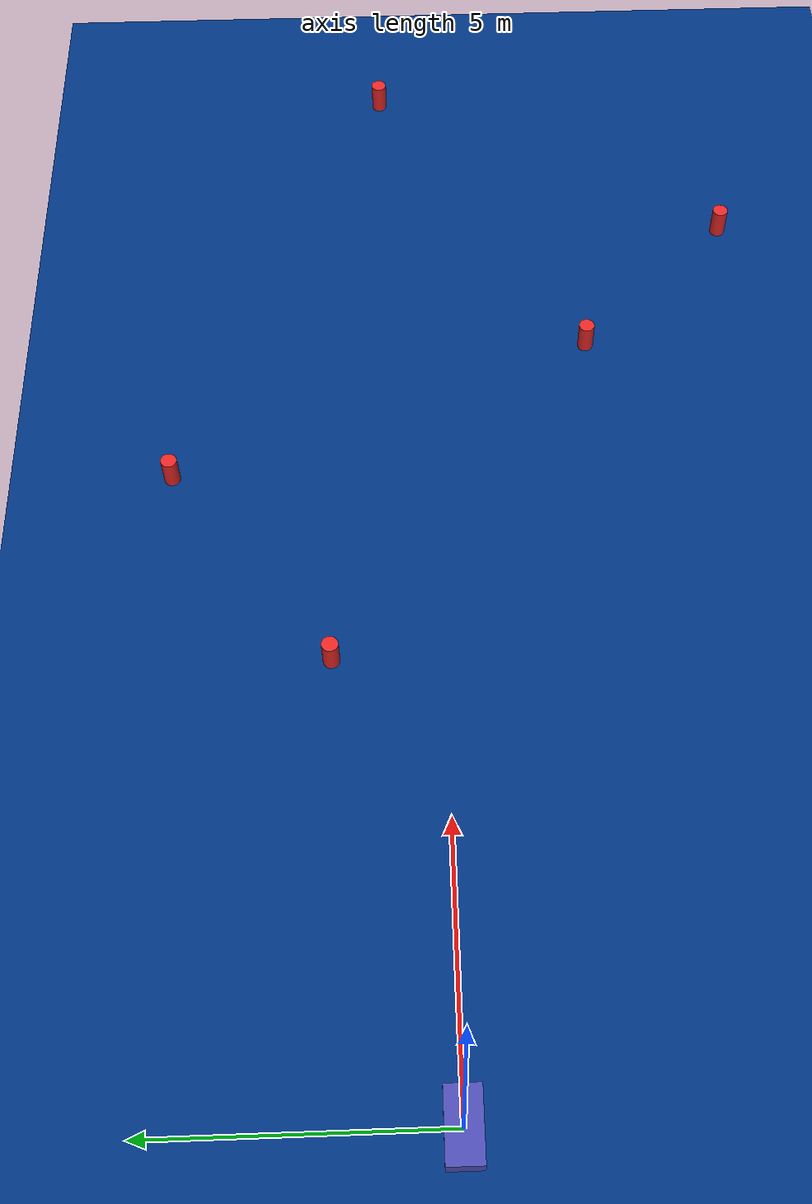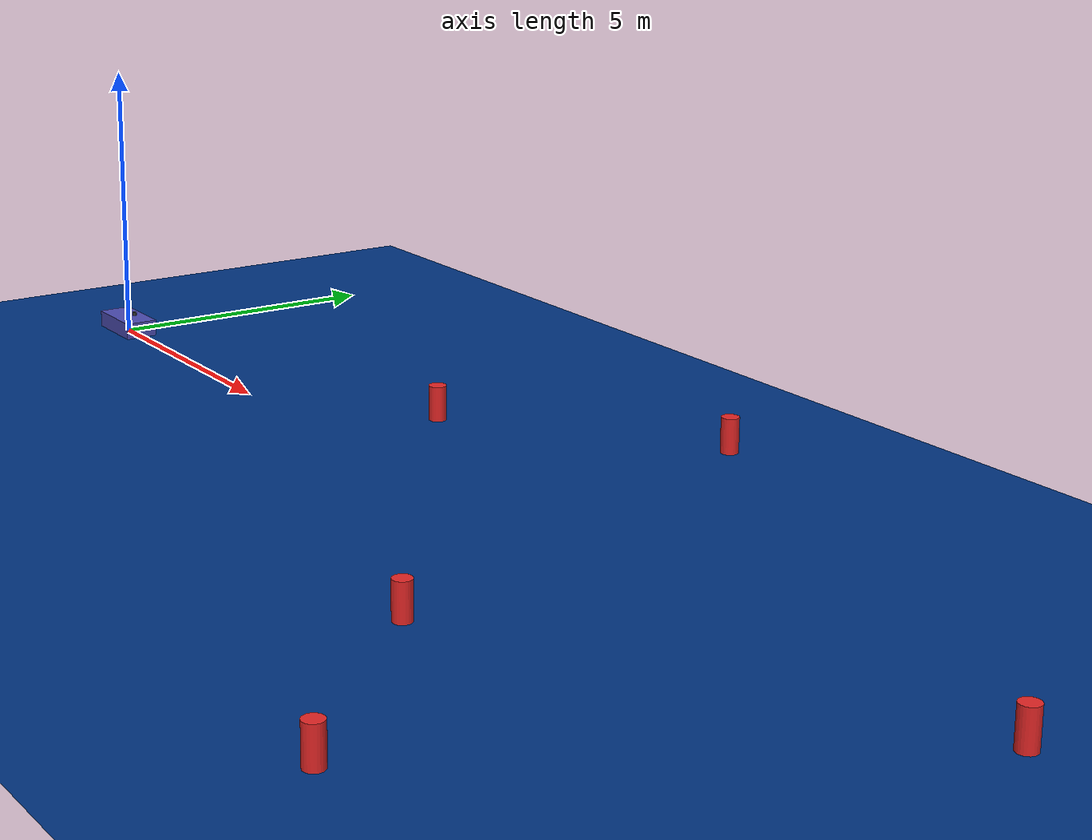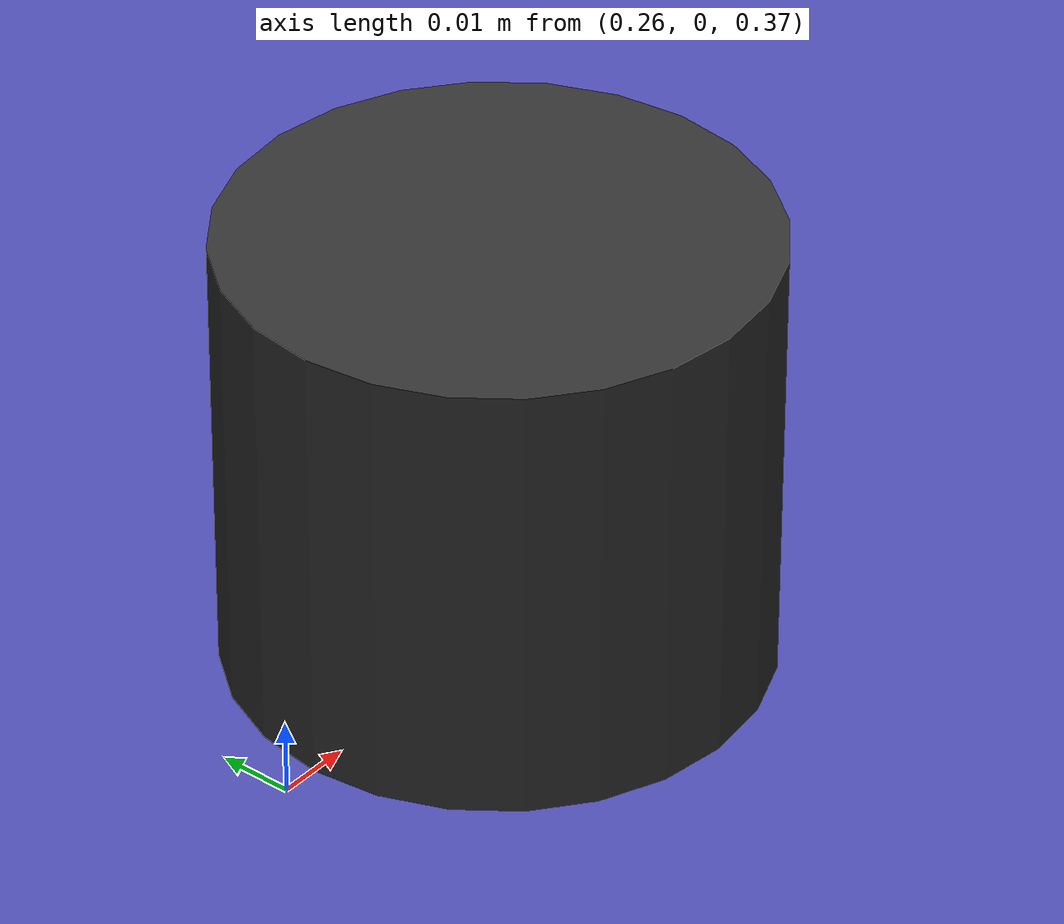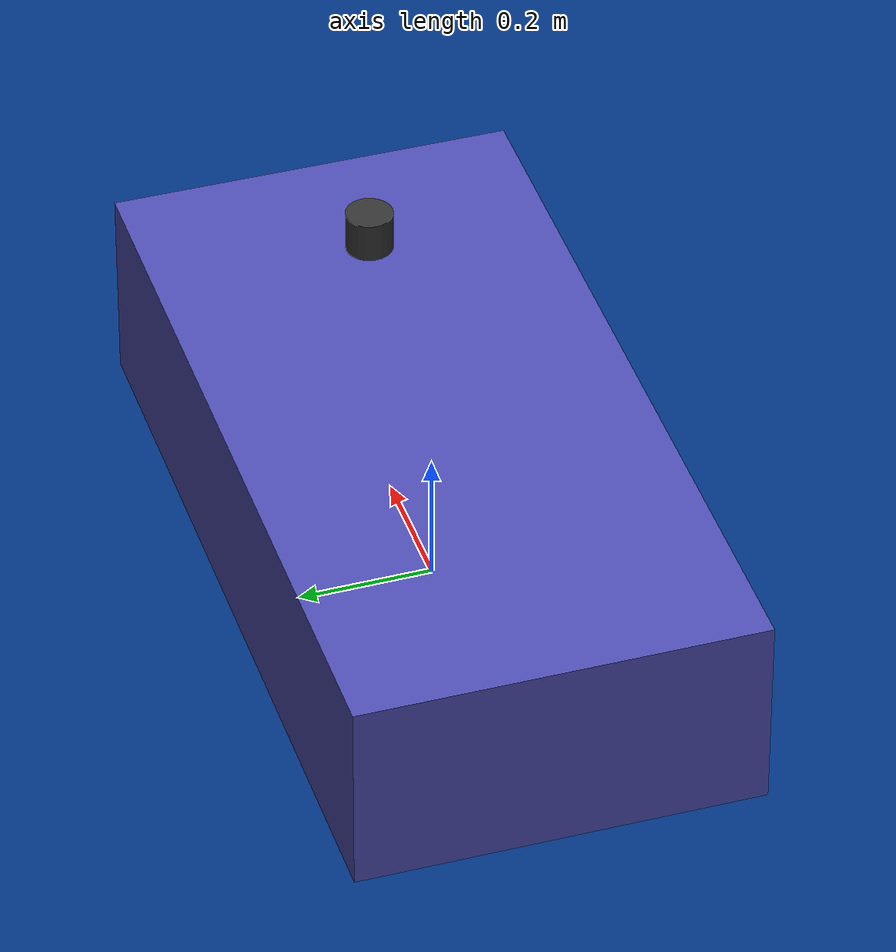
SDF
<?xml version="1.0" ?>
<sdf version="1.9">
  <world name="idaws_lake">

    <!-- Physics -->
    <physics name="1ms" type="ignored">
      <max_step_size>0.001</max_step_size>
      <real_time_factor>1.0</real_time_factor>
    </physics>

    <!-- System plugins -->
    <plugin filename="gz-sim-physics-system" name="gz::sim::systems::Physics"/>
    <plugin filename="gz-sim-sensors-system" name="gz::sim::systems::Sensors">
      <render_engine>ogre2</render_engine>
    </plugin>
    <plugin filename="gz-sim-imu-system" name="gz::sim::systems::Imu"/>
    <plugin filename="gz-sim-navsat-system" name="gz::sim::systems::NavSat"/>
    <plugin filename="gz-sim-scene-broadcaster-system" name="gz::sim::systems::SceneBroadcaster"/>
    <plugin filename="gz-sim-user-commands-system" name="gz::sim::systems::UserCommands"/>

    <!-- Buoyancy -->
    <plugin filename="gz-sim-buoyancy-system" name="gz::sim::systems::Buoyancy">
      <uniform_fluid_density>1000</uniform_fluid_density>
    </plugin>

    <!-- Spherical coordinates (Istanbul area) -->
    <spherical_coordinates>
      <surface_model>EARTH_WGS84</surface_model>
      <world_frame_orientation>ENU</world_frame_orientation>
      <latitude_deg>41.015</latitude_deg>
      <longitude_deg>28.979</longitude_deg>
      <elevation>0</elevation>
      <heading_deg>0</heading_deg>
    </spherical_coordinates>

    <!-- Lighting -->
    <light type="directional" name="sun">
      <cast_shadows>true</cast_shadows>
      <pose>0 0 100 0 0 0</pose>
      <diffuse>0.9 0.9 0.9 1</diffuse>
      <specular>0.3 0.3 0.3 1</specular>
      <attenuation>
        <range>1000</range>
        <constant>0.9</constant>
        <linear>0.01</linear>
        <quadratic>0.001</quadratic>
      </attenuation>
      <direction>-0.5 0.1 -0.9</direction>
    </light>

    <!-- Water surface (visual ground plane) -->
    <model name="water_surface">
      <static>true</static>
      <pose>0 0 0 0 0 0</pose>
      <link name="water_link">
        <visual name="water_visual">
          <geometry>
            <plane><normal>0 0 1</normal><size>200 200</size></plane>
          </geometry>
          <material>
            <ambient>0.0 0.15 0.4 0.8</ambient>
            <diffuse>0.0 0.2 0.5 0.8</diffuse>
          </material>
        </visual>
        <collision name="water_collision">
          <geometry>
            <plane><normal>0 0 1</normal><size>200 200</size></plane>
          </geometry>
        </collision>
      </link>
    </model>

    <!-- USV -->
    <include>
      <uri>model://idaws_usv</uri>
      <pose>0 0 0.15 0 0 0</pose>
    </include>

    <!-- Buoy obstacles -->
    <include>
      <uri>model://buoy_obstacle</uri>
      <name>buoy_1</name>
      <pose>8 2 0.3 0 0 0</pose>
    </include>
    <include>
      <uri>model://buoy_obstacle</uri>
      <name>buoy_2</name>
      <pose>15 -3 0.3 0 0 0</pose>
    </include>
    <include>
      <uri>model://buoy_obstacle</uri>
      <name>buoy_3</name>
      <pose>22 1 0.3 0 0 0</pose>
    </include>
    <include>
      <uri>model://buoy_obstacle</uri>
      <name>buoy_4</name>
      <pose>12 5 0.3 0 0 0</pose>
    </include>
    <include>
      <uri>model://buoy_obstacle</uri>
      <name>buoy_5</name>
      <pose>18 -6 0.3 0 0 0</pose>
    </include>

  </world>
</sdf>

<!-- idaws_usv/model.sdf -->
<sdf version="1.9">
  <model name="idaws_usv">
    <pose>0 0 0.05 0 0 0</pose>

    <!-- Base hull -->
    <link name="base_link">
      <inertial>
        <mass>12.0</mass>
        <inertia>
          <ixx>0.465</ixx>
          <iyy>1.53</iyy>
          <izz>1.8</izz>
          <ixy>0</ixy><ixz>0</ixz><iyz>0</iyz>
        </inertia>
      </inertial>
      <collision name="hull_collision">
        <geometry>
          <box><size>1.2 0.6 0.3</size></box>
        </geometry>
      </collision>
      <visual name="hull_visual">
        <geometry>
          <box><size>1.2 0.6 0.3</size></box>
        </geometry>
        <material>
          <ambient>0.2 0.2 0.6 1</ambient>
          <diffuse>0.3 0.3 0.7 1</diffuse>
        </material>
      </visual>
    </link>

    <!-- IMU link -->
    <link name="imu_link">
      <pose>0 0 0.1 0 0 0</pose>
      <inertial>
        <mass>0.01</mass>
        <inertia>
          <ixx>0.0001</ixx>
          <iyy>0.0001</iyy>
          <izz>0.0001</izz>
        </inertia>
      </inertial>
      <sensor name="imu_sensor" type="imu">
        <always_on>1</always_on>
        <update_rate>200</update_rate>
        <imu>
          <angular_velocity>
            <x><noise type="gaussian"><mean>0</mean><stddev>0.01</stddev></noise></x>
            <y><noise type="gaussian"><mean>0</mean><stddev>0.01</stddev></noise></y>
            <z><noise type="gaussian"><mean>0</mean><stddev>0.01</stddev></noise></z>
          </angular_velocity>
          <linear_acceleration>
            <x><noise type="gaussian"><mean>0</mean><stddev>0.1</stddev></noise></x>
            <y><noise type="gaussian"><mean>0</mean><stddev>0.1</stddev></noise></y>
            <z><noise type="gaussian"><mean>0</mean><stddev>0.1</stddev></noise></z>
          </linear_acceleration>
        </imu>
      </sensor>
    </link>
    <joint name="imu_joint" type="fixed">
      <parent>base_link</parent>
      <child>imu_link</child>
    </joint>

    <!-- LiDAR link -->
    <link name="lidar_link">
      <pose>0.3 0 0.25 0 0 0</pose>
      <inertial>
        <mass>0.1</mass>
        <inertia>
          <ixx>0.001</ixx>
          <iyy>0.001</iyy>
          <izz>0.001</izz>
        </inertia>
      </inertial>
      <collision name="lidar_collision">
        <geometry>
          <cylinder><radius>0.035</radius><length>0.06</length></cylinder>
        </geometry>
      </collision>
      <visual name="lidar_visual">
        <geometry>
          <cylinder><radius>0.035</radius><length>0.06</length></cylinder>
        </geometry>
        <material>
          <ambient>0.1 0.1 0.1 1</ambient>
          <diffuse>0.2 0.2 0.2 1</diffuse>
        </material>
      </visual>
      <sensor name="gpu_lidar" type="gpu_lidar">
        <always_on>1</always_on>
        <update_rate>10</update_rate>
        <visualize>1</visualize>
        <ray>
          <scan>
            <horizontal>
              <samples>720</samples>
              <resolution>1</resolution>
              <min_angle>-3.14159</min_angle>
              <max_angle>3.14159</max_angle>
            </horizontal>
            <vertical>
              <samples>1</samples>
              <resolution>1</resolution>
              <min_angle>0</min_angle>
              <max_angle>0</max_angle>
            </vertical>
          </scan>
          <range>
            <min>0.15</min>
            <max>12.0</max>
            <resolution>0.01</resolution>
          </range>
          <noise>
            <type>gaussian</type>
            <mean>0</mean>
            <stddev>0.005</stddev>
          </noise>
        </ray>
      </sensor>
    </link>
    <joint name="lidar_joint" type="fixed">
      <parent>base_link</parent>
      <child>lidar_link</child>
    </joint>

    <!-- Left propeller -->
    <link name="left_propeller">
      <pose>-0.5 0.25 -0.1 0 0 0</pose>
      <inertial>
        <mass>0.2</mass>
        <inertia>
          <ixx>0.0004</ixx>
          <iyy>0.0004</iyy>
          <izz>0.0004</izz>
        </inertia>
      </inertial>
      <visual name="left_prop_visual">
        <geometry>
          <cylinder><radius>0.05</radius><length>0.02</length></cylinder>
        </geometry>
        <material>
          <ambient>0.8 0.2 0.2 1</ambient>
          <diffuse>0.9 0.3 0.3 1</diffuse>
        </material>
      </visual>
    </link>
    <joint name="left_propeller_joint" type="revolute">
      <parent>base_link</parent>
      <child>left_propeller</child>
      <axis>
        <xyz>0 0 1</xyz>
        <limit>
          <lower>-1e16</lower>
          <upper>1e16</upper>
        </limit>
      </axis>
    </joint>

    <!-- Right propeller -->
    <link name="right_propeller">
      <pose>-0.5 -0.25 -0.1 0 0 0</pose>
      <inertial>
        <mass>0.2</mass>
        <inertia>
          <ixx>0.0004</ixx>
          <iyy>0.0004</iyy>
          <izz>0.0004</izz>
        </inertia>
      </inertial>
      <visual name="right_prop_visual">
        <geometry>
          <cylinder><radius>0.05</radius><length>0.02</length></cylinder>
        </geometry>
        <material>
          <ambient>0.2 0.8 0.2 1</ambient>
          <diffuse>0.3 0.9 0.3 1</diffuse>
        </material>
      </visual>
    </link>
    <joint name="right_propeller_joint" type="revolute">
      <parent>base_link</parent>
      <child>right_propeller</child>
      <axis>
        <xyz>0 0 1</xyz>
        <limit>
          <lower>-1e16</lower>
          <upper>1e16</upper>
        </limit>
      </axis>
    </joint>

    <!-- ArduPilot plugin -->
    <plugin name="ArduPilotPlugin" filename="ArduPilotPlugin">
      <fdm_addr>127.0.0.1</fdm_addr>
      <fdm_port_in>9002</fdm_port_in>
      <connectionTimeoutMaxCount>5</connectionTimeoutMaxCount>
      <lock_step>0</lock_step>

      <modelXYZToAirplaneXForwardZDown degrees="true">0 0 0 180 0 0</modelXYZToAirplaneXForwardZDown>
      <gazeboXYZToNED degrees="true">0 0 0 180 0 90</gazeboXYZToNED>

      <imuName>imu_link::imu_sensor</imuName>

      <!-- Channel 0: SERVO1 = ThrottleLeft -->
      <control channel="0">
        <jointName>left_propeller_joint</jointName>
        <useForce>1</useForce>
        <multiplier>100</multiplier>
        <offset>-0.5</offset>
        <servo_min>1100</servo_min>
        <servo_max>1900</servo_max>
        <type>VELOCITY</type>
        <p_gain>0.2</p_gain>
        <i_gain>0</i_gain>
        <d_gain>0</d_gain>
        <i_max>0</i_max>
        <i_min>0</i_min>
        <cmd_max>100</cmd_max>
        <cmd_min>-100</cmd_min>
      </control>

      <!-- Channel 2: SERVO3 = ThrottleRight -->
      <control channel="2">
        <jointName>right_propeller_joint</jointName>
        <useForce>1</useForce>
        <multiplier>100</multiplier>
        <offset>-0.5</offset>
        <servo_min>1100</servo_min>
        <servo_max>1900</servo_max>
        <type>VELOCITY</type>
        <p_gain>0.2</p_gain>
        <i_gain>0</i_gain>
        <d_gain>0</d_gain>
        <i_max>0</i_max>
        <i_min>0</i_min>
        <cmd_max>100</cmd_max>
        <cmd_min>-100</cmd_min>
      </control>
    </plugin>

  </model>
</sdf>

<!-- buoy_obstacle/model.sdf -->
<sdf version="1.9">
  <model name="buoy_obstacle">
    <static>true</static>
    <link name="buoy_link">
      <visual name="buoy_visual">
        <geometry>
          <cylinder>
            <radius>0.15</radius>
            <length>0.6</length>
          </cylinder>
        </geometry>
        <material>
          <ambient>0.8 0.1 0.1 1</ambient>
          <diffuse>0.9 0.15 0.15 1</diffuse>
        </material>
      </visual>
      <collision name="buoy_collision">
        <geometry>
          <cylinder>
            <radius>0.15</radius>
            <length>0.6</length>
          </cylinder>
        </geometry>
      </collision>
    </link>
  </model>
</sdf>
